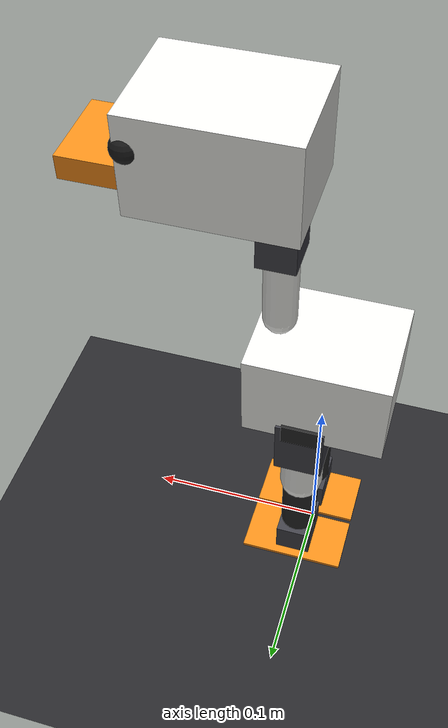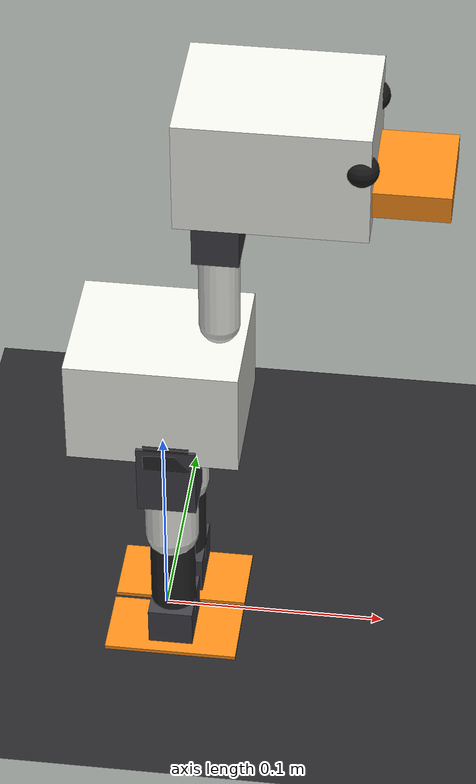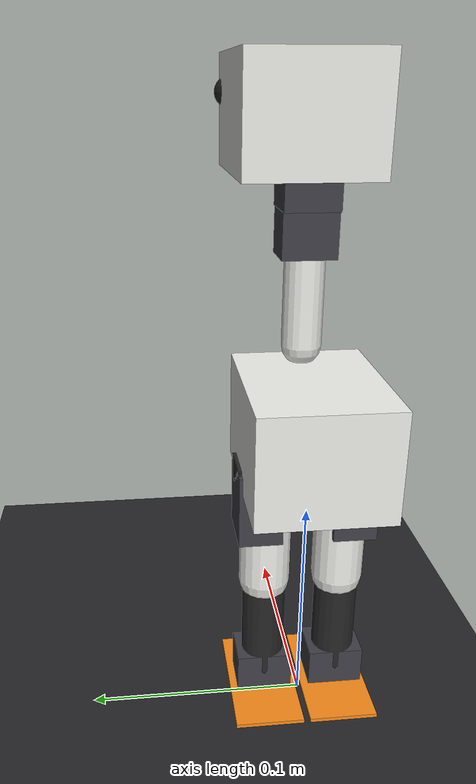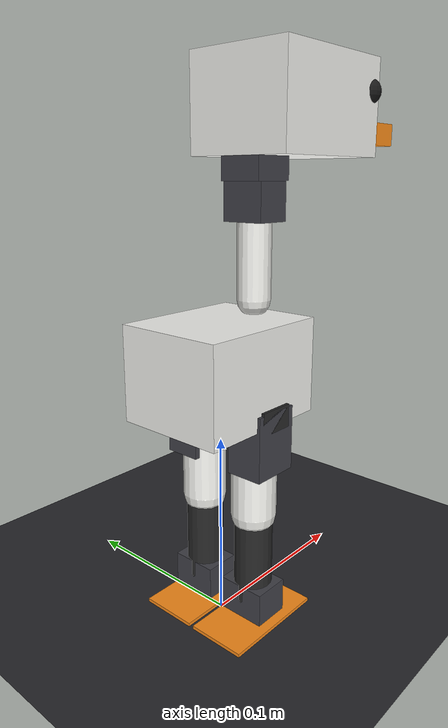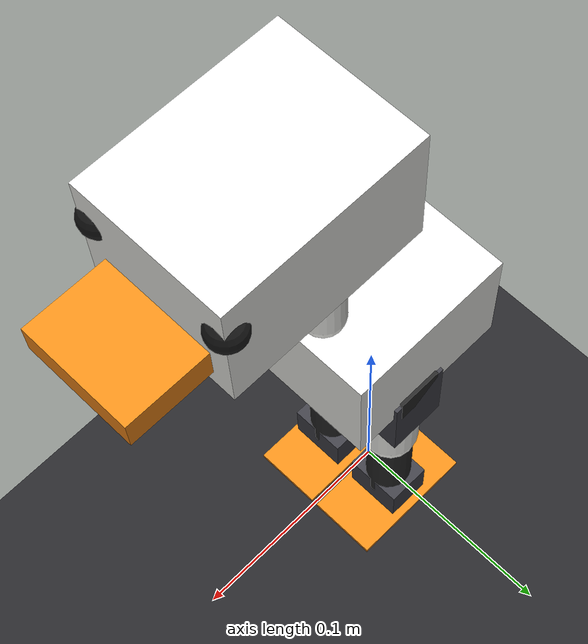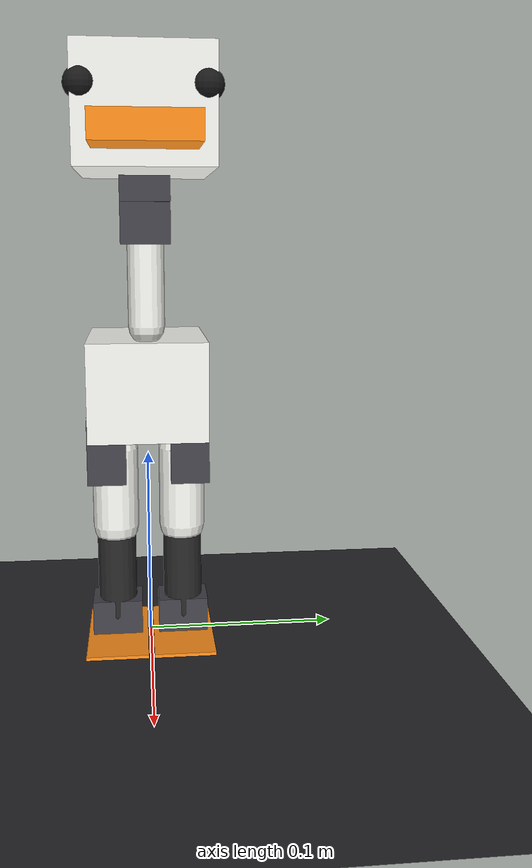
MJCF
<?xml version="1.0" ?>
<mujoco model="duckbot_hold">
  <compiler angle="radian" autolimits="true"/>
  <option timestep="0.005" integrator="implicitfast"/>
  <visual>
    <global offwidth="1280" offheight="720"/>
  </visual>
  <default>
    <joint damping="0.053" frictionloss="0.0048" armature="0.0018"/>
    <position kp="5.0" kv="0.1" forcerange="-0.96 0.96" ctrlrange="-10 10"/>
    <default class="visual">
      <geom contype="0" conaffinity="0" group="1"/>
    </default>
    <default class="collision">
      <geom contype="1" conaffinity="1" group="1" condim="3"/>
    </default>
  </default>
  <asset>
    <texture name="grid" type="2d" builtin="checker" width="512" height="512" rgb1="0.12 0.12 0.13" rgb2="0.18 0.18 0.2"/>
    <material name="grid" texture="grid" texrepeat="20 20" texuniform="true" reflectance="0.1"/>
  </asset>
  <worldbody>
    <light pos="0.5 -0.5 1.5" dir="-0.3 0.3 -1" diffuse="0.8 0.8 0.8"/>
    <light pos="-0.5 0.5 1.0" dir="0.3 -0.3 -1" diffuse="0.4 0.4 0.4"/>
    <geom name="floor" type="plane" size="3 3 0.05" material="grid" friction="0.8 0.005 0.0001" contype="1" conaffinity="1"/>
    <camera name="side" pos="0.42 -0.42 0.24" mode="targetbody" target="trunk"/>
    <camera name="front" pos="0.55 0 0.18" mode="targetbody" target="trunk"/>
    <body name="trunk" pos="0 0 0.1385">
      <freejoint name="root"/>
      <geom name="trunk_shell" type="box" size="0.0375 0.03 0.025" rgba="0.95 0.95 0.93 1" mass="0.2" class="collision"/>
      <site name="imu" pos="0 0 0" size="0.005" group="4"/>
      <camera name="track" mode="trackcom" pos="0.45 -0.55 0.30" xyaxes="0.77 0.63 0 -0.28 0.34 0.9"/>
      <body name="left_hip_yaw" pos="0.006 0.0175 -0.005">
        <joint name="left_hip_yaw" axis="0 0 1" range="-0.436 0.524"/>
        <geom type="box" size="0.012 0.01 0.008" pos="0 0 -0.00825" rgba="0.25 0.25 0.28 1" mass="0.023" class="visual"/>
        <body name="left_hip_roll" pos="0 0 -0.0165">
          <joint name="left_hip_roll" axis="1 0 0" range="-0.384 0.384"/>
          <geom type="box" size="0.01 0.014 0.006" rgba="0.15 0.15 0.15 1" mass="0.006" class="visual"/>
          <body name="left_upper_leg" pos="0 0 -0.0125">
            <joint name="left_hip_pitch" axis="0 1 0" range="-1.571 1.571"/>
            <geom type="box" size="0.013 0.01 0.017" pos="0 0.004 0" rgba="0.25 0.25 0.28 1" mass="0.018" class="visual"/>
            <geom type="capsule" size="0.012" fromto="0 0 0 0 0 -0.042" rgba="0.95 0.95 0.93 1" mass="0.030000000000000002" class="visual"/>
            <body name="left_lower_leg" pos="0 0 -0.042">
              <joint name="left_knee" axis="0 1 0" range="-1.571 1.571"/>
              <geom type="capsule" size="0.0102" fromto="0 0 0 0 0 -0.049" rgba="0.15 0.15 0.15 1" mass="0.022" class="collision"/>
              <body name="left_foot" pos="0 0 -0.049">
                <joint name="left_ankle" axis="0 1 0" range="-1.571 1.571"/>
                <geom type="box" size="0.01 0.013 0.009" rgba="0.25 0.25 0.28 1" mass="0.018" class="visual"/>
                <geom name="left_sole" type="box" size="0.03 0.016 0.003" pos="0 0 -0.015" rgba="0.98 0.55 0.10 1" mass="0.012" friction="1.0 0.005 0.0001" class="collision"/>
                <site name="left_foot_site" type="box" size="0.03 0.016 0.001" pos="0 0 -0.018" group="4"/>
              </body>
            </body>
          </body>
        </body>
      </body>
      <body name="neck" pos="0.026 0 0.032">
        <joint name="neck_pitch" axis="0 1 0" range="-1.571 1.047"/>
        <geom type="capsule" size="0.009" fromto="0 0 0 0 0 0.05" rgba="0.95 0.95 0.93 1" mass="0.037" class="visual"/>
        <body name="head_pitch" pos="0 0 0.05">
          <joint name="head_pitch" axis="0 1 0" range="-1.571 1.571"/>
          <geom type="box" size="0.01 0.012 0.01" rgba="0.25 0.25 0.28 1" mass="0.006" class="visual"/>
          <body name="head_yaw" pos="0 0 0.019">
            <joint name="head_yaw" axis="0 0 1" range="-2.967 2.967"/>
            <geom type="box" size="0.012 0.012 0.009" rgba="0.25 0.25 0.28 1" mass="0.049" class="visual"/>
            <body name="head" pos="0 0 0.018">
              <joint name="head_roll" axis="1 0 0" range="-0.436 0.436"/>
              <geom name="head_shell" type="box" size="0.04 0.03 0.025" pos="0.025 0 0.01" rgba="0.95 0.95 0.93 1" mass="0.189" class="collision"/>
              <geom type="box" size="0.018 0.022 0.006" pos="0.079 0 -0.002" rgba="0.98 0.55 0.10 1" mass="0" class="visual"/>
              <geom type="sphere" size="0.007" pos="0.061 0.026 0.018" rgba="0.1 0.1 0.1 1" mass="0" class="visual"/>
              <geom type="sphere" size="0.007" pos="0.061 -0.026 0.018" rgba="0.1 0.1 0.1 1" mass="0" class="visual"/>
              <site name="camera_site" pos="0.065 0 0.01" group="4"/>
              <camera name="eye" pos="0.075 0 0.015" xyaxes="0 -1 0 0 0 1" fovy="90"/>
            </body>
          </body>
        </body>
      </body>
      <body name="right_hip_yaw" pos="0.006 -0.0175 -0.005">
        <joint name="right_hip_yaw" axis="0 0 1" range="-0.436 0.524"/>
        <geom type="box" size="0.012 0.01 0.008" pos="0 0 -0.00825" rgba="0.25 0.25 0.28 1" mass="0.023" class="visual"/>
        <body name="right_hip_roll" pos="0 0 -0.0165">
          <joint name="right_hip_roll" axis="1 0 0" range="-0.384 0.384"/>
          <geom type="box" size="0.01 0.014 0.006" rgba="0.15 0.15 0.15 1" mass="0.006" class="visual"/>
          <body name="right_upper_leg" pos="0 0 -0.0125">
            <joint name="right_hip_pitch" axis="0 1 0" range="-1.571 1.571"/>
            <geom type="box" size="0.013 0.01 0.017" pos="0 -0.004 0" rgba="0.25 0.25 0.28 1" mass="0.018" class="visual"/>
            <geom type="capsule" size="0.012" fromto="0 0 0 0 0 -0.042" rgba="0.95 0.95 0.93 1" mass="0.030000000000000002" class="visual"/>
            <body name="right_lower_leg" pos="0 0 -0.042">
              <joint name="right_knee" axis="0 1 0" range="-1.571 1.571"/>
              <geom type="capsule" size="0.0102" fromto="0 0 0 0 0 -0.049" rgba="0.15 0.15 0.15 1" mass="0.022" class="collision"/>
              <body name="right_foot" pos="0 0 -0.049">
                <joint name="right_ankle" axis="0 1 0" range="-1.571 1.571"/>
                <geom type="box" size="0.01 0.013 0.009" rgba="0.25 0.25 0.28 1" mass="0.018" class="visual"/>
                <geom name="right_sole" type="box" size="0.03 0.016 0.003" pos="0 0 -0.015" rgba="0.98 0.55 0.10 1" mass="0.012" friction="1.0 0.005 0.0001" class="collision"/>
                <site name="right_foot_site" type="box" size="0.03 0.016 0.001" pos="0 0 -0.018" group="4"/>
              </body>
            </body>
          </body>
        </body>
      </body>
    </body>
  </worldbody>
  <actuator>
    <position name="left_hip_yaw" joint="left_hip_yaw"/>
    <position name="left_hip_roll" joint="left_hip_roll"/>
    <position name="left_hip_pitch" joint="left_hip_pitch"/>
    <position name="left_knee" joint="left_knee"/>
    <position name="left_ankle" joint="left_ankle"/>
    <position name="neck_pitch" joint="neck_pitch"/>
    <position name="head_pitch" joint="head_pitch"/>
    <position name="head_yaw" joint="head_yaw"/>
    <position name="head_roll" joint="head_roll"/>
    <position name="right_hip_yaw" joint="right_hip_yaw"/>
    <position name="right_hip_roll" joint="right_hip_roll"/>
    <position name="right_hip_pitch" joint="right_hip_pitch"/>
    <position name="right_knee" joint="right_knee"/>
    <position name="right_ankle" joint="right_ankle"/>
  </actuator>
  <sensor>
    <framequat name="orientation" objtype="site" objname="imu" noise="0.001"/>
    <gyro name="angular-velocity" site="imu" noise="0.005"/>
    <gyro name="imu_ang_vel" site="imu"/>
    <velocimeter name="imu_lin_vel" site="imu"/>
    <accelerometer name="imu_accel" site="imu"/>
    <subtreeangmom name="root_angmom" body="trunk"/>
    <touch name="left_foot_contact" site="left_foot_site"/>
    <touch name="right_foot_contact" site="right_foot_site"/>
  </sensor>
  <keyframe>
    <key name="stand" qpos="0 0 0.1385 1 0 0 0 0 0.087 -0.3 0 0.3 0.35 -0.35 0 0 0 -0.087 -0.3 0 0.3" ctrl="0 0.087 -0.3 0 0.3 0.35 -0.35 0 0 0 -0.087 -0.3 0 0.3"/>
  </keyframe>
</mujoco>
